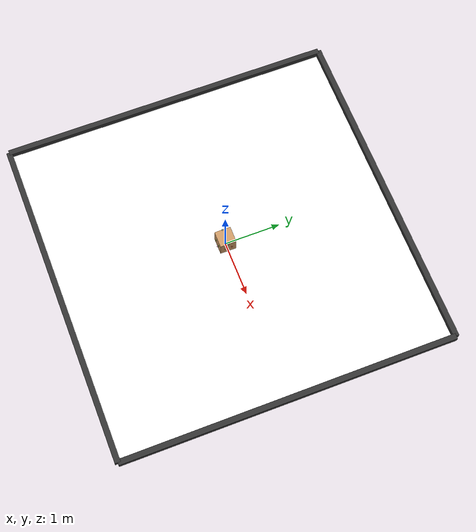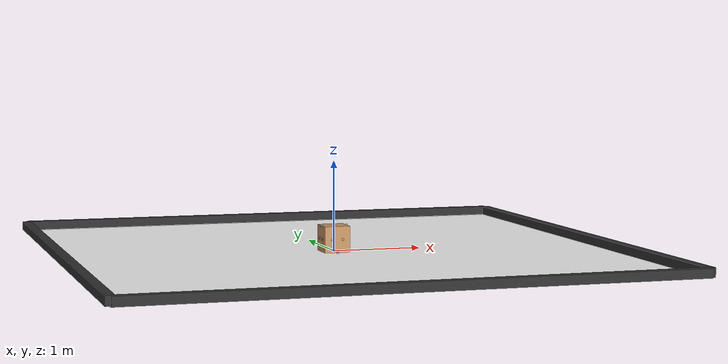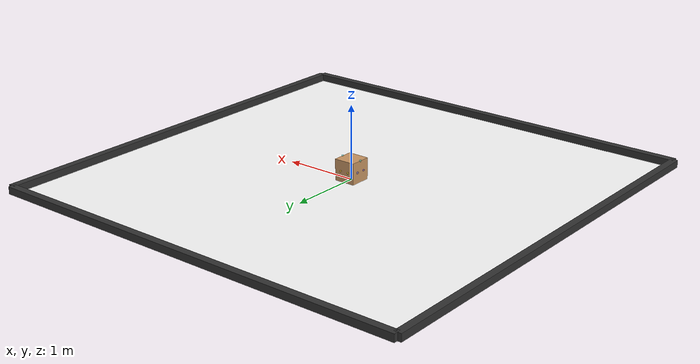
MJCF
<mujoco model="satellite_planar_3d">
  <compiler angle="degree" coordinate="local" inertiafromgeom="true"/>
  <option integrator="RK4" timestep="0.005" gravity="0 0 0"/>

  <asset>
    <material name="mat_workspace" rgba="0.05 0.05 0.05 1" specular="0" emission="0" shininess="0" reflectance="0"/>
    <material name="mat_thruster_active" rgba="1 0.2 0.2 1" emission="1"/>
    <material name="mat_thruster_inactive" rgba="0.5 0.5 0.5 0.3"/>

    <!-- Grid -->
    <texture name="grid_tex" type="2d" builtin="checker" width="512" height="512" rgb1=".1 .2 .3" rgb2=".2 .3 .4" mark="edge" markrgb=".8 .8 .8"/>
    <material name="grid_mat" texture="grid_tex" texrepeat="6 6" texuniform="true" reflectance=".2"/>

    <!-- Legacy Texture (kept for compatibility) -->
    <texture name="grid" type="2d" builtin="checker" rgb1=".1 .2 .3" rgb2=".2 .3 .4" width="512" height="512" mark="edge" markrgb=".8 .8 .8"/>
    <material name="geom" rgba="0.8 0.6 0.4 1"/>

    <!-- White Background -->
    <texture name="tex_sky" type="skybox" builtin="gradient" width="512" height="512" rgb1="1 1 1" rgb2="0.9 0.9 0.9"/>
  </asset>

  <visual>
    <map fogstart="5" fogend="10" haze="0" znear="0.01" zfar="50"/>
    <headlight ambient="0.4 0.4 0.4" diffuse="0.4 0.4 0.4" specular="0.1 0.1 0.1"/>
    <rgba haze="0.1 0.1 0.1 1"/>
    <global offwidth="2560" offheight="1440"/>
  </visual>

  <default>
    <joint armature="0" damping="0.0" limited="false"/>
    <geom conaffinity="0" contype="1" condim="3" friction="0 0 0" rgba="0.8 0.6 0.4 1"/>
    <site type="sphere" size="0.015" rgba="0.5 0.5 0.5 0.3"/>
  </default>

  <worldbody>
    <!-- Simple Overhead Lighting - High Ambient for Softness -->
    <light ambient="0.7 0.7 0.7" diffuse="0.1 0.1 0.1" specular="0 0 0" pos="0 0 4" dir="0 0 -1" castshadow="false"/>

    <!-- Overhead Camera (matches 3D view but potentially adjusted) -->
    <camera name="overhead_cam" pos="0 0 4" mode="fixed" xyaxes="1 0 0 0 1 0"/>

    <!-- Ground plane for air bearing table (6m x 6m) -->
    <geom name="floor" type="plane" size="3 3 0.1" material="grid_mat" rgba="1 1 1 1" contype="0" conaffinity="0" friction="0 0 0"/>

    <!-- 3x3m workspace edges (10cm high), bouncy walls -->
    <geom name="wall_north" type="box" pos="0 3 0.05" size="3 0.05 0.05" material="mat_workspace" rgba="0.2 0.2 0.2 1"
          contype="1" conaffinity="1" friction="0 0 0" solref="0.002 1" solimp="0.9 0.95 0.001"/>
    <geom name="wall_south" type="box" pos="0 -3 0.05" size="3 0.05 0.05" material="mat_workspace" rgba="0.2 0.2 0.2 1"
          contype="1" conaffinity="1" friction="0 0 0" solref="0.002 1" solimp="0.9 0.95 0.001"/>
    <geom name="wall_east" type="box" pos="3 0 0.05" size="0.05 3 0.05" material="mat_workspace" rgba="0.2 0.2 0.2 1"
          contype="1" conaffinity="1" friction="0 0 0" solref="0.002 1" solimp="0.9 0.95 0.001"/>
    <geom name="wall_west" type="box" pos="-3 0 0.05" size="0.05 3 0.05" material="mat_workspace" rgba="0.2 0.2 0.2 1"
          contype="1" conaffinity="1" friction="0 0 0" solref="0.002 1" solimp="0.9 0.95 0.001"/>

    <!-- Satellite body (6-DOF 3D) -->
    <body name="satellite" pos="0 0 0.145">
      <!-- 6-DOF Free Joint -->
      <joint name="root" type="free"/>

      <!-- Main body -->
      <geom name="satellite_geom" type="box" size="0.145 0.145 0.145" mass="10"/>

      <!-- Thruster Sites -->
      <site name="thruster1" pos="0.145 0.06 0"   rgba="1 0 0 0.3"/>
      <site name="thruster2" pos="0.145 -0.06 0"  rgba="1 0.2 0 0.3"/>
      <site name="thruster3" pos="0.06 -0.145 0"  rgba="0 1 0 0.3"/>
      <site name="thruster4" pos="-0.06 -0.145 0" rgba="0.2 1 0 0.3"/>
      <site name="thruster5" pos="-0.145 -0.06 0" rgba="0 0 1 0.3"/>
      <site name="thruster6" pos="-0.145 0.06 0"  rgba="0 0.2 1 0.3"/>
      <site name="thruster7" pos="-0.06 0.145 0"  rgba="1 1 0 0.3"/>
      <site name="thruster8" pos="0.06 0.145 0"   rgba="1 0.8 0 0.3"/>

      <!-- New Z-Axis Thrusters (9-12) -->
      <site name="thruster9"  pos="0.145 0 0.145"  rgba="0 1 1 0.3"/>
      <site name="thruster10" pos="-0.145 0 0.145" rgba="0 1 1 0.3"/>
      <site name="thruster11" pos="0 0.145 -0.145" rgba="1 0 1 0.3"/>
      <site name="thruster12" pos="0 -0.145 -0.145" rgba="1 0 1 0.3"/>
    </body>
  </worldbody>
</mujoco>
